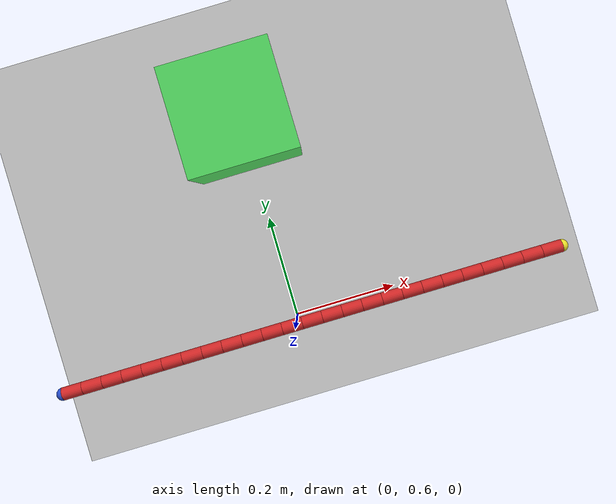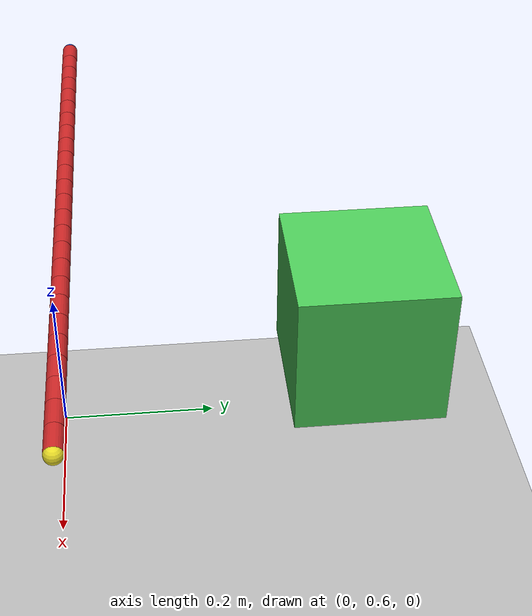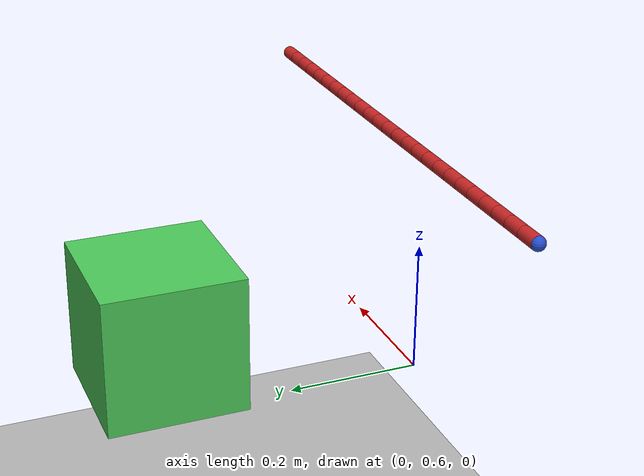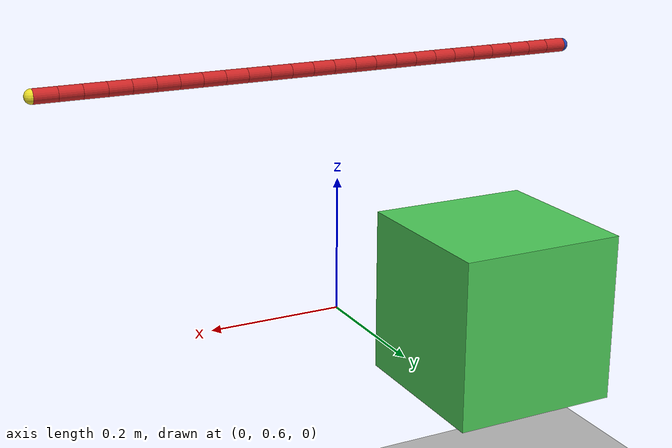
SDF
<sdf version="1.4">
 <world name="default">
  <scene>
   <grid>false</grid>
   <origin_visual>false</origin_visual>
   <sky><clouds><speed>12</speed></clouds></sky>
  </scene>
  <physics name="ode" type="ode">
   <max_step_size>0.01</max_step_size>
   <real_time_factor>1</real_time_factor>
   <real_time_update_rate>0</real_time_update_rate>
   <ode>
    <solver>
     <island_threads>2</island_threads>
     <type>quick</type>
     <iters>100</iters>
     <sor>1.0</sor>
     <use_dynamic_moi_rescaling>false</use_dynamic_moi_rescaling>
    </solver>
    <constraints><erp>0.2</erp></constraints>
   </ode>
  </physics>
  <plugin name="arm_gazebo_ros" filename="libarm_gazebo_ros_plugin.so"/>
  <plugin name="gazebo_ros_tf_plugin" filename="libgazebo_ros_tf_plugin.so"/>
  <plugin name="ros_link_attacher_plugin" filename="libgazebo_ros_link_attacher.so"/>
  <plugin name="position_3d_plugin" filename="libposition_3d_plugin.so"/>
  <plugin name="collision_map_plugin" filename="libcollision_map_plugin.so"/>
  <include><uri>model://my_ground_plane</uri><pose>0 0 -0.415 0 0 0</pose></include>
  <include><uri>model://sun</uri></include>
  <include><name>box3</name><pose>0.0 1.0 0.0 0 0 0</pose><uri>model://box3</uri></include>
  <include><name>box5</name><pose>0.0 1.0 0.0 0 0 0</pose><uri>model://box5</uri></include>
  <include><name>box8</name><pose>0.0 1.0 0.0 0 0 0</pose><uri>model://box3</uri></include>
  <include><name>box10</name><pose>0.0 1.0 0.0 0 0 0</pose><uri>model://box5</uri></include>
  <include><name>box13</name><pose>0.0 1.0 0.0 0 0 0</pose><uri>model://box3</uri></include>
  <include><name>box15</name><pose>0.0 1.0 0.0 0 0 0</pose><uri>model://box5</uri></include>
  <include><uri>model://rope_3d</uri><pose>-0.36 0.63 0.37 0 0 0</pose></include>
 </world>
</sdf>

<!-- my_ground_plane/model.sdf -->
<sdf version="1.5">
    <model name="my_ground_plane">
        <static>true</static>
            <allow_auto_disable>true</allow_auto_disable>
        <link name="link">
            <collision name="collision">
                <geometry>
                    <plane>
                        <normal>0 0 1</normal>
                        <size>4 4</size>
                    </plane>
                </geometry>
                <surface>
                    <friction>
                        <ode>
                            <mu>1000</mu>
                            <mu2>1000</mu2>
                        </ode>
                    </friction>
                    <contact>
                        <ode>
                            <kp>1e15</kp>
                            <kd>1e10</kd>
                        </ode>
                    </contact>
                </surface>
            </collision>
            <visual name="visual">
                <cast_shadows>false</cast_shadows>
                <geometry>
                    <plane>
                        <normal>0 0 1</normal>
                        <size>4 4</size>
                    </plane>
                </geometry>
                <material>
                    <script>
                        <uri>model://my_ground_plane/concrete.material</uri>
                        <name>ConcreteTexture</name>
                    </script>
                </material>
            </visual>
        </link>
    </model>
</sdf>

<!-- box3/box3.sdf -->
<sdf version="1.6">
    <model name="box3">
        <allow_auto_disable>true</allow_auto_disable>
        <link name="link_1">
            <kinematic>true</kinematic>
            <pose>0 0 0.13 0 0 0 0</pose>
            <inertial>
                <pose>0 0 -0.08 0 0 0 0</pose>
                <inertia>
                    <ixx>0.04441666666666666</ixx>
                    <ixy>0</ixy>
                    <ixz>0</ixz>
                    <iyy>0.047083333333333324</iyy>
                    <iyz>0</iyz>
                    <izz>0.010833333333333334</izz>
                </inertia>
                <mass>10.0</mass>
            </inertial>
            <visual name="visual">
                <geometry>
                    <box>
                        <size>0.09 0.07 0.07</size>
                    </box>
                </geometry>
                <material>
                    <ambient>0.1 0.3 0.5 1.0</ambient>
                    <diffuse>0.1 0.3 0.5 1.0</diffuse>
                </material>
            </visual>
            <collision name="box_collision">
                <geometry>
                    <box>
                        <size>0.09 0.07 0.07</size>
                    </box>
                </geometry>
                <surface>
                    <friction>
                        <ode>
                            <mu>1.0</mu>
                            <mu2>1.0</mu2>
                        </ode>
                    </friction>
                    <contact>
                        <ode>
                            <kp>1e15</kp>
                            <kd>1e12</kd>
                        </ode>
                    </contact>
                </surface>
            </collision>
        </link>
    </model>
</sdf>

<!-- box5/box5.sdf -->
<sdf version="1.6">
    <model name="box5">
        <allow_auto_disable>true</allow_auto_disable>
        <link name="link_1">
            <kinematic>true</kinematic>
            <pose>0 0 0.15 0 0 0 0</pose>
            <inertial>
                <pose>0 0 -0.08 0 0 0 0</pose>
                <inertia>
                    <ixx>0.017666666666666667</ixx>
                    <ixy>0</ixy>
                    <ixz>0</ixz>
                    <iyy>0.019333333333333334</iyy>
                    <iyz>0</iyz>
                    <izz>0.004333333333333333</izz>
                </inertia>
                <mass>10.0</mass>
            </inertial>
            <visual name="visual">
                <geometry>
                    <box>
                        <size>0.2 0.2 0.2</size>
                    </box>
                </geometry>
                    <material>
                    <ambient>0.4 0.95 0.35 1.0</ambient>
                    <diffuse>0.3 0.8 0.35 1.0</diffuse>
                    </material>
            </visual>
            <collision name="box_collision">
                <geometry>
                    <box>
                        <size>0.2 0.2 0.2</size>
                    </box>
                </geometry>
                <surface>
                    <friction>
                        <ode>
                            <mu>1.0</mu>
                            <mu2>1.0</mu2>
                        </ode>
                    </friction>
                    <contact>
                        <ode>
                            <kp>1e15</kp>
                            <kd>1e12</kd>
                        </ode>
                    </contact>
                </surface>
            </collision>
        </link>
    </model>
</sdf>
